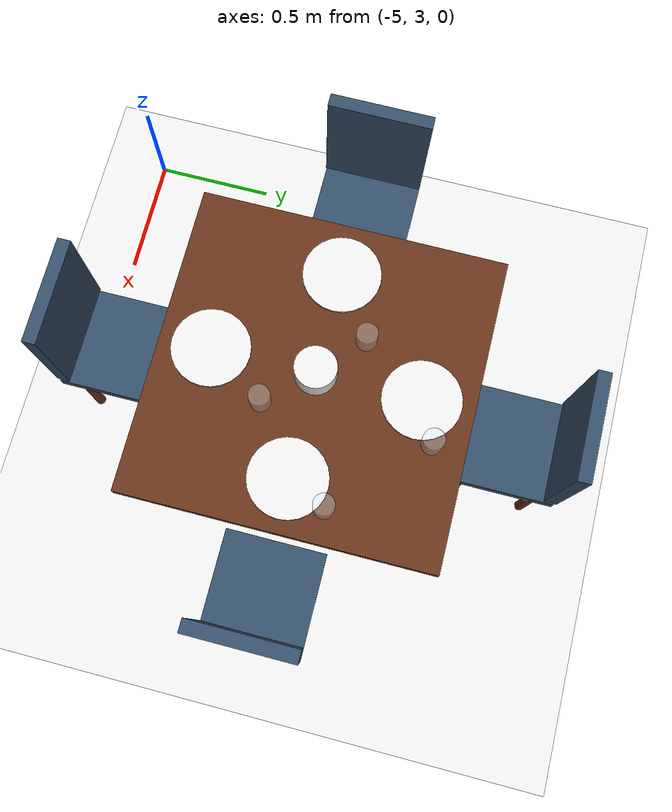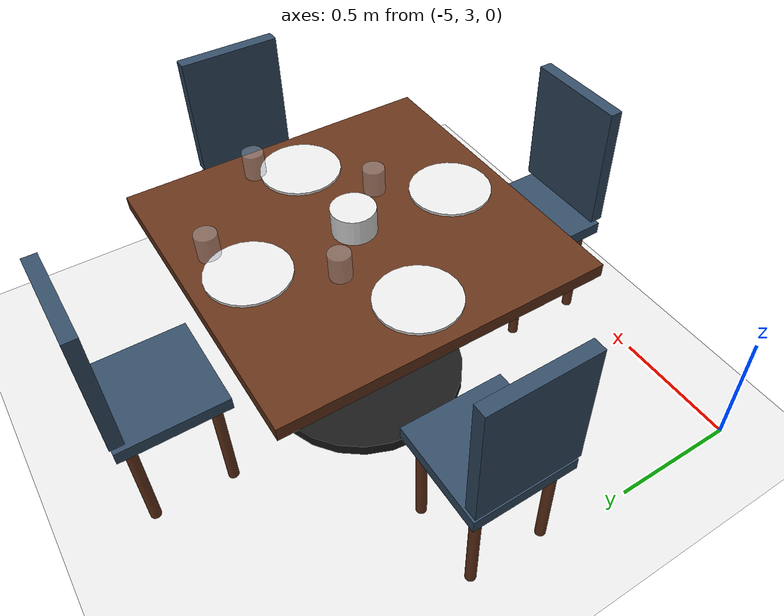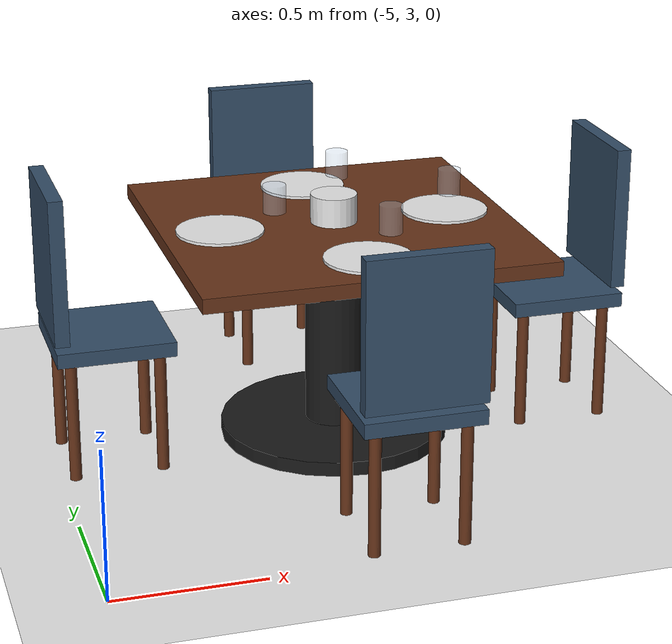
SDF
<sdf version="1.9">
 <world name="argo_restaurant">
  <model name="ground_plane">
   <static>true</static>
   <link name="link">
    <collision name="collision">
     <geometry><plane><normal>0 0 1</normal><size>100 100</size></plane></geometry>
    </collision>
    <visual name="visual">
     <geometry><plane><normal>0 0 1</normal><size>100 100</size></plane></geometry>
     <material>
      <ambient>0.9 0.9 0.9 1</ambient>
      <diffuse>0.9 0.9 0.9 1</diffuse>
      <specular>0.1 0.1 0.1 1</specular>
      <pbr><metal><roughness>0.1</roughness><metalness>0.0</metalness></metal></pbr>
     </material>
    </visual>
   </link>
  </model>
  <model name="table_6">
   <static>true</static>
   <link name="top_link">
    <pose>-4.0 4.0 0.75 0 0 0</pose>
    <collision name="top_collision"><geometry><box><size>1.2 1.2 0.05</size></box></geometry></collision>
    <visual name="top_visual">
     <geometry><box><size>1.2 1.2 0.05</size></box></geometry>
     <material>
      <ambient>0.4 0.2 0.1 1</ambient>
      <diffuse>0.4 0.2 0.1 1</diffuse>
      <specular>0.1 0.1 0.1 1</specular>
      <pbr><metal><roughness>0.7</roughness><metalness>0.1</metalness></metal></pbr>
     </material>
    </visual>
   </link>
   <link name="leg_link">
    <pose>-4.0 4.0 0.375 0 0 0</pose>
    <collision name="leg_collision">
     <geometry><cylinder><radius>0.1</radius><length>0.75</length></cylinder></geometry>
    </collision>
    <visual name="leg_visual">
     <geometry><cylinder><radius>0.1</radius><length>0.75</length></cylinder></geometry>
     <material>
      <ambient>0.1 0.1 0.1 1</ambient>
      <diffuse>0.1 0.1 0.1 1</diffuse>
      <specular>0.1 0.1 0.1 1</specular>
      <pbr><metal><roughness>0.5</roughness><metalness>0.0</metalness></metal></pbr>
     </material>
    </visual>
   </link>
   <link name="base_link">
    <pose>-4.0 4.0 0.025 0 0 0</pose>
    <collision name="base_collision">
     <geometry><cylinder><radius>0.4</radius><length>0.05</length></cylinder></geometry>
    </collision>
    <visual name="base_visual">
     <geometry><cylinder><radius>0.4</radius><length>0.05</length></cylinder></geometry>
     <material>
      <ambient>0.1 0.1 0.1 1</ambient>
      <diffuse>0.1 0.1 0.1 1</diffuse>
      <specular>0.1 0.1 0.1 1</specular>
      <pbr><metal><roughness>0.5</roughness><metalness>0.0</metalness></metal></pbr>
     </material>
    </visual>
   </link>
   <link name="chair_0_seat_link">
    <pose>-4.0 4.8 0.45 0 0 0</pose>
    <collision name="chair_0_seat_collision"><geometry><box><size>0.4 0.4 0.05</size></box></geometry></collision>
    <visual name="chair_0_seat_visual">
     <geometry><box><size>0.4 0.4 0.05</size></box></geometry>
     <material>
      <ambient>0.2 0.3 0.4 1</ambient>
      <diffuse>0.2 0.3 0.4 1</diffuse>
      <specular>0.1 0.1 0.1 1</specular>
      <pbr><metal><roughness>0.9</roughness><metalness>0.0</metalness></metal></pbr>
     </material>
    </visual>
   </link>
   <link name="chair_0_leg_-0.15_-0.15_link">
    <pose>-4.15 4.6499999999999995 0.225 0 0 0</pose>
    <collision name="chair_0_leg_-0.15_-0.15_collision">
     <geometry><cylinder><radius>0.02</radius><length>0.45</length></cylinder></geometry>
    </collision>
    <visual name="chair_0_leg_-0.15_-0.15_visual">
     <geometry><cylinder><radius>0.02</radius><length>0.45</length></cylinder></geometry>
     <material>
      <ambient>0.4 0.2 0.1 1</ambient>
      <diffuse>0.4 0.2 0.1 1</diffuse>
      <specular>0.1 0.1 0.1 1</specular>
      <pbr><metal><roughness>0.7</roughness><metalness>0.1</metalness></metal></pbr>
     </material>
    </visual>
   </link>
   <link name="chair_0_leg_0.15_-0.15_link">
    <pose>-3.85 4.6499999999999995 0.225 0 0 0</pose>
    <collision name="chair_0_leg_0.15_-0.15_collision">
     <geometry><cylinder><radius>0.02</radius><length>0.45</length></cylinder></geometry>
    </collision>
    <visual name="chair_0_leg_0.15_-0.15_visual">
     <geometry><cylinder><radius>0.02</radius><length>0.45</length></cylinder></geometry>
     <material>
      <ambient>0.4 0.2 0.1 1</ambient>
      <diffuse>0.4 0.2 0.1 1</diffuse>
      <specular>0.1 0.1 0.1 1</specular>
      <pbr><metal><roughness>0.7</roughness><metalness>0.1</metalness></metal></pbr>
     </material>
    </visual>
   </link>
   <link name="chair_0_leg_-0.15_0.15_link">
    <pose>-4.15 4.95 0.225 0 0 0</pose>
    <collision name="chair_0_leg_-0.15_0.15_collision">
     <geometry><cylinder><radius>0.02</radius><length>0.45</length></cylinder></geometry>
    </collision>
    <visual name="chair_0_leg_-0.15_0.15_visual">
     <geometry><cylinder><radius>0.02</radius><length>0.45</length></cylinder></geometry>
     <material>
      <ambient>0.4 0.2 0.1 1</ambient>
      <diffuse>0.4 0.2 0.1 1</diffuse>
      <specular>0.1 0.1 0.1 1</specular>
      <pbr><metal><roughness>0.7</roughness><metalness>0.1</metalness></metal></pbr>
     </material>
    </visual>
   </link>
   <link name="chair_0_leg_0.15_0.15_link">
    <pose>-3.85 4.95 0.225 0 0 0</pose>
    <collision name="chair_0_leg_0.15_0.15_collision">
     <geometry><cylinder><radius>0.02</radius><length>0.45</length></cylinder></geometry>
    </collision>
    <visual name="chair_0_leg_0.15_0.15_visual">
     <geometry><cylinder><radius>0.02</radius><length>0.45</length></cylinder></geometry>
     <material>
      <ambient>0.4 0.2 0.1 1</ambient>
      <diffuse>0.4 0.2 0.1 1</diffuse>
      <specular>0.1 0.1 0.1 1</specular>
      <pbr><metal><roughness>0.7</roughness><metalness>0.1</metalness></metal></pbr>
     </material>
    </visual>
   </link>
   <link name="chair_0_back_link">
    <pose>-4.0 4.9799999999999995 0.75 0 0 0</pose>
    <collision name="chair_0_back_collision"><geometry><box><size>0.4 0.05 0.5</size></box></geometry></collision>
    <visual name="chair_0_back_visual">
     <geometry><box><size>0.4 0.05 0.5</size></box></geometry>
     <material>
      <ambient>0.2 0.3 0.4 1</ambient>
      <diffuse>0.2 0.3 0.4 1</diffuse>
      <specular>0.1 0.1 0.1 1</specular>
      <pbr><metal><roughness>0.9</roughness><metalness>0.0</metalness></metal></pbr>
     </material>
    </visual>
   </link>
   <link name="chair_1_seat_link">
    <pose>-4.0 3.2 0.45 0 0 3.1415</pose>
    <collision name="chair_1_seat_collision"><geometry><box><size>0.4 0.4 0.05</size></box></geometry></collision>
    <visual name="chair_1_seat_visual">
     <geometry><box><size>0.4 0.4 0.05</size></box></geometry>
     <material>
      <ambient>0.2 0.3 0.4 1</ambient>
      <diffuse>0.2 0.3 0.4 1</diffuse>
      <specular>0.1 0.1 0.1 1</specular>
      <pbr><metal><roughness>0.9</roughness><metalness>0.0</metalness></metal></pbr>
     </material>
    </visual>
   </link>
   <link name="chair_1_leg_-0.15_-0.15_link">
    <pose>-4.15 3.0500000000000003 0.225 0 0 0</pose>
    <collision name="chair_1_leg_-0.15_-0.15_collision">
     <geometry><cylinder><radius>0.02</radius><length>0.45</length></cylinder></geometry>
    </collision>
    <visual name="chair_1_leg_-0.15_-0.15_visual">
     <geometry><cylinder><radius>0.02</radius><length>0.45</length></cylinder></geometry>
     <material>
      <ambient>0.4 0.2 0.1 1</ambient>
      <diffuse>0.4 0.2 0.1 1</diffuse>
      <specular>0.1 0.1 0.1 1</specular>
      <pbr><metal><roughness>0.7</roughness><metalness>0.1</metalness></metal></pbr>
     </material>
    </visual>
   </link>
   <link name="chair_1_leg_0.15_-0.15_link">
    <pose>-3.85 3.0500000000000003 0.225 0 0 0</pose>
    <collision name="chair_1_leg_0.15_-0.15_collision">
     <geometry><cylinder><radius>0.02</radius><length>0.45</length></cylinder></geometry>
    </collision>
    <visual name="chair_1_leg_0.15_-0.15_visual">
     <geometry><cylinder><radius>0.02</radius><length>0.45</length></cylinder></geometry>
     <material>
      <ambient>0.4 0.2 0.1 1</ambient>
      <diffuse>0.4 0.2 0.1 1</diffuse>
      <specular>0.1 0.1 0.1 1</specular>
      <pbr><metal><roughness>0.7</roughness><metalness>0.1</metalness></metal></pbr>
     </material>
    </visual>
   </link>
   <link name="chair_1_leg_-0.15_0.15_link">
    <pose>-4.15 3.35 0.225 0 0 0</pose>
    <collision name="chair_1_leg_-0.15_0.15_collision">
     <geometry><cylinder><radius>0.02</radius><length>0.45</length></cylinder></geometry>
    </collision>
    <visual name="chair_1_leg_-0.15_0.15_visual">
     <geometry><cylinder><radius>0.02</radius><length>0.45</length></cylinder></geometry>
     <material>
      <ambient>0.4 0.2 0.1 1</ambient>
      <diffuse>0.4 0.2 0.1 1</diffuse>
      <specular>0.1 0.1 0.1 1</specular>
      <pbr><metal><roughness>0.7</roughness><metalness>0.1</metalness></metal></pbr>
     </material>
    </visual>
   </link>
   <link name="chair_1_leg_0.15_0.15_link">
    <pose>-3.85 3.35 0.225 0 0 0</pose>
    <collision name="chair_1_leg_0.15_0.15_collision">
     <geometry><cylinder><radius>0.02</radius><length>0.45</length></cylinder></geometry>
    </collision>
    <visual name="chair_1_leg_0.15_0.15_visual">
     <geometry><cylinder><radius>0.02</radius><length>0.45</length></cylinder></geometry>
     <material>
      <ambient>0.4 0.2 0.1 1</ambient>
      <diffuse>0.4 0.2 0.1 1</diffuse>
      <specular>0.1 0.1 0.1 1</specular>
      <pbr><metal><roughness>0.7</roughness><metalness>0.1</metalness></metal></pbr>
     </material>
    </visual>
   </link>
   <link name="chair_1_back_link">
    <pose>-4.000016677646139 3.020000000772622 0.75 0 0 3.1415</pose>
    <collision name="chair_1_back_collision"><geometry><box><size>0.4 0.05 0.5</size></box></geometry></collision>
    <visual name="chair_1_back_visual">
     <geometry><box><size>0.4 0.05 0.5</size></box></geometry>
     <material>
      <ambient>0.2 0.3 0.4 1</ambient>
      <diffuse>0.2 0.3 0.4 1</diffuse>
      <specular>0.1 0.1 0.1 1</specular>
      <pbr><metal><roughness>0.9</roughness><metalness>0.0</metalness></metal></pbr>
     </material>
    </visual>
   </link>
   <link name="chair_2_seat_link">
    <pose>-3.2 4.0 0.45 0 0 -1.5707</pose>
    <collision name="chair_2_seat_collision"><geometry><box><size>0.4 0.4 0.05</size></box></geometry></collision>
    <visual name="chair_2_seat_visual">
     <geometry><box><size>0.4 0.4 0.05</size></box></geometry>
     <material>
      <ambient>0.2 0.3 0.4 1</ambient>
      <diffuse>0.2 0.3 0.4 1</diffuse>
      <specular>0.1 0.1 0.1 1</specular>
      <pbr><metal><roughness>0.9</roughness><metalness>0.0</metalness></metal></pbr>
     </material>
    </visual>
   </link>
   <link name="chair_2_leg_-0.15_-0.15_link">
    <pose>-3.35 3.85 0.225 0 0 0</pose>
    <collision name="chair_2_leg_-0.15_-0.15_collision">
     <geometry><cylinder><radius>0.02</radius><length>0.45</length></cylinder></geometry>
    </collision>
    <visual name="chair_2_leg_-0.15_-0.15_visual">
     <geometry><cylinder><radius>0.02</radius><length>0.45</length></cylinder></geometry>
     <material>
      <ambient>0.4 0.2 0.1 1</ambient>
      <diffuse>0.4 0.2 0.1 1</diffuse>
      <specular>0.1 0.1 0.1 1</specular>
      <pbr><metal><roughness>0.7</roughness><metalness>0.1</metalness></metal></pbr>
     </material>
    </visual>
   </link>
   <link name="chair_2_leg_0.15_-0.15_link">
    <pose>-3.0500000000000003 3.85 0.225 0 0 0</pose>
    <collision name="chair_2_leg_0.15_-0.15_collision">
     <geometry><cylinder><radius>0.02</radius><length>0.45</length></cylinder></geometry>
    </collision>
    <visual name="chair_2_leg_0.15_-0.15_visual">
     <geometry><cylinder><radius>0.02</radius><length>0.45</length></cylinder></geometry>
     <material>
      <ambient>0.4 0.2 0.1 1</ambient>
      <diffuse>0.4 0.2 0.1 1</diffuse>
      <specular>0.1 0.1 0.1 1</specular>
      <pbr><metal><roughness>0.7</roughness><metalness>0.1</metalness></metal></pbr>
     </material>
    </visual>
   </link>
   <link name="chair_2_leg_-0.15_0.15_link">
    <pose>-3.35 4.15 0.225 0 0 0</pose>
    <collision name="chair_2_leg_-0.15_0.15_collision">
     <geometry><cylinder><radius>0.02</radius><length>0.45</length></cylinder></geometry>
    </collision>
    <visual name="chair_2_leg_-0.15_0.15_visual">
     <geometry><cylinder><radius>0.02</radius><length>0.45</length></cylinder></geometry>
     <material>
      <ambient>0.4 0.2 0.1 1</ambient>
      <diffuse>0.4 0.2 0.1 1</diffuse>
      <specular>0.1 0.1 0.1 1</specular>
      <pbr><metal><roughness>0.7</roughness><metalness>0.1</metalness></metal></pbr>
     </material>
    </visual>
   </link>
   <link name="chair_2_leg_0.15_0.15_link">
    <pose>-3.0500000000000003 4.15 0.225 0 0 0</pose>
    <collision name="chair_2_leg_0.15_0.15_collision">
     <geometry><cylinder><radius>0.02</radius><length>0.45</length></cylinder></geometry>
    </collision>
    <visual name="chair_2_leg_0.15_0.15_visual">
     <geometry><cylinder><radius>0.02</radius><length>0.45</length></cylinder></geometry>
     <material>
      <ambient>0.4 0.2 0.1 1</ambient>
      <diffuse>0.4 0.2 0.1 1</diffuse>
      <specular>0.1 0.1 0.1 1</specular>
      <pbr><metal><roughness>0.7</roughness><metalness>0.1</metalness></metal></pbr>
     </material>
    </visual>
   </link>
   <link name="chair_2_back_link">
    <pose>-3.020000000835097 4.000017338823055 0.75 0 0 -1.5707</pose>
    <collision name="chair_2_back_collision"><geometry><box><size>0.4 0.05 0.5</size></box></geometry></collision>
    <visual name="chair_2_back_visual">
     <geometry><box><size>0.4 0.05 0.5</size></box></geometry>
     <material>
      <ambient>0.2 0.3 0.4 1</ambient>
      <diffuse>0.2 0.3 0.4 1</diffuse>
      <specular>0.1 0.1 0.1 1</specular>
      <pbr><metal><roughness>0.9</roughness><metalness>0.0</metalness></metal></pbr>
     </material>
    </visual>
   </link>
   <link name="chair_3_seat_link">
    <pose>-4.8 4.0 0.45 0 0 1.5707</pose>
    <collision name="chair_3_seat_collision"><geometry><box><size>0.4 0.4 0.05</size></box></geometry></collision>
    <visual name="chair_3_seat_visual">
     <geometry><box><size>0.4 0.4 0.05</size></box></geometry>
     <material>
      <ambient>0.2 0.3 0.4 1</ambient>
      <diffuse>0.2 0.3 0.4 1</diffuse>
      <specular>0.1 0.1 0.1 1</specular>
      <pbr><metal><roughness>0.9</roughness><metalness>0.0</metalness></metal></pbr>
     </material>
    </visual>
   </link>
   <link name="chair_3_leg_-0.15_-0.15_link">
    <pose>-4.95 3.85 0.225 0 0 0</pose>
    <collision name="chair_3_leg_-0.15_-0.15_collision">
     <geometry><cylinder><radius>0.02</radius><length>0.45</length></cylinder></geometry>
    </collision>
    <visual name="chair_3_leg_-0.15_-0.15_visual">
     <geometry><cylinder><radius>0.02</radius><length>0.45</length></cylinder></geometry>
     <material>
      <ambient>0.4 0.2 0.1 1</ambient>
      <diffuse>0.4 0.2 0.1 1</diffuse>
      <specular>0.1 0.1 0.1 1</specular>
      <pbr><metal><roughness>0.7</roughness><metalness>0.1</metalness></metal></pbr>
     </material>
    </visual>
   </link>
   <link name="chair_3_leg_0.15_-0.15_link">
    <pose>-4.6499999999999995 3.85 0.225 0 0 0</pose>
    <collision name="chair_3_leg_0.15_-0.15_collision">
     <geometry><cylinder><radius>0.02</radius><length>0.45</length></cylinder></geometry>
    </collision>
    <visual name="chair_3_leg_0.15_-0.15_visual">
     <geometry><cylinder><radius>0.02</radius><length>0.45</length></cylinder></geometry>
     <material>
      <ambient>0.4 0.2 0.1 1</ambient>
      <diffuse>0.4 0.2 0.1 1</diffuse>
      <specular>0.1 0.1 0.1 1</specular>
      <pbr><metal><roughness>0.7</roughness><metalness>0.1</metalness></metal></pbr>
     </material>
    </visual>
   </link>
   <link name="chair_3_leg_-0.15_0.15_link">
    <pose>-4.95 4.15 0.225 0 0 0</pose>
    <collision name="chair_3_leg_-0.15_0.15_collision">
     <geometry><cylinder><radius>0.02</radius><length>0.45</length></cylinder></geometry>
    </collision>
    <visual name="chair_3_leg_-0.15_0.15_visual">
     <geometry><cylinder><radius>0.02</radius><length>0.45</length></cylinder></geometry>
     <material>
      <ambient>0.4 0.2 0.1 1</ambient>
      <diffuse>0.4 0.2 0.1 1</diffuse>
      <specular>0.1 0.1 0.1 1</specular>
      <pbr><metal><roughness>0.7</roughness><metalness>0.1</metalness></metal></pbr>
     </material>
    </visual>
   </link>
   <link name="chair_3_leg_0.15_0.15_link">
    <pose>-4.6499999999999995 4.15 0.225 0 0 0</pose>
    <collision name="chair_3_leg_0.15_0.15_collision">
     <geometry><cylinder><radius>0.02</radius><length>0.45</length></cylinder></geometry>
    </collision>
    <visual name="chair_3_leg_0.15_0.15_visual">
     <geometry><cylinder><radius>0.02</radius><length>0.45</length></cylinder></geometry>
     <material>
      <ambient>0.4 0.2 0.1 1</ambient>
      <diffuse>0.4 0.2 0.1 1</diffuse>
      <specular>0.1 0.1 0.1 1</specular>
      <pbr><metal><roughness>0.7</roughness><metalness>0.1</metalness></metal></pbr>
     </material>
    </visual>
   </link>
   <link name="chair_3_back_link">
    <pose>-4.979999999164903 4.000017338823055 0.75 0 0 1.5707</pose>
    <collision name="chair_3_back_collision"><geometry><box><size>0.4 0.05 0.5</size></box></geometry></collision>
    <visual name="chair_3_back_visual">
     <geometry><box><size>0.4 0.05 0.5</size></box></geometry>
     <material>
      <ambient>0.2 0.3 0.4 1</ambient>
      <diffuse>0.2 0.3 0.4 1</diffuse>
      <specular>0.1 0.1 0.1 1</specular>
      <pbr><metal><roughness>0.9</roughness><metalness>0.0</metalness></metal></pbr>
     </material>
    </visual>
   </link>
   <link name="centerpiece_pot_link">
    <pose>-4.0 4.0 0.825 0 0 0</pose>
    <collision name="centerpiece_pot_collision">
     <geometry><cylinder><radius>0.08</radius><length>0.1</length></cylinder></geometry>
    </collision>
    <visual name="centerpiece_pot_visual">
     <geometry><cylinder><radius>0.08</radius><length>0.1</length></cylinder></geometry>
     <material>
      <ambient>0.9 0.9 0.9 1</ambient>
      <diffuse>0.9 0.9 0.9 1</diffuse>
      <specular>0.1 0.1 0.1 1</specular>
      <pbr><metal><roughness>0.2</roughness><metalness>0.0</metalness></metal></pbr>
     </material>
    </visual>
   </link>
   <link name="plate_0_link">
    <pose>-4.0 4.4 0.78 0 0 0</pose>
    <collision name="plate_0_collision">
     <geometry><cylinder><radius>0.15</radius><length>0.01</length></cylinder></geometry>
    </collision>
    <visual name="plate_0_visual">
     <geometry><cylinder><radius>0.15</radius><length>0.01</length></cylinder></geometry>
     <material>
      <ambient>0.9 0.9 0.9 1</ambient>
      <diffuse>0.9 0.9 0.9 1</diffuse>
      <specular>0.1 0.1 0.1 1</specular>
      <pbr><metal><roughness>0.2</roughness><metalness>0.0</metalness></metal></pbr>
     </material>
    </visual>
   </link>
   <link name="glass_0_link">
    <pose>-3.85 4.47 0.825 0 0 0</pose>
    <collision name="glass_0_collision">
     <geometry><cylinder><radius>0.04</radius><length>0.1</length></cylinder></geometry>
    </collision>
    <visual name="glass_0_visual">
     <geometry><cylinder><radius>0.04</radius><length>0.1</length></cylinder></geometry>
     <material>
      <ambient>0.8 0.9 1.0 0.3</ambient>
      <diffuse>0.8 0.9 1.0 0.3</diffuse>
      <specular>0.9 0.9 0.9 1</specular>
      <pbr><metal><roughness>0.0</roughness><metalness>0.9</metalness></metal></pbr>
     </material>
    </visual>
   </link>
   <link name="plate_1_link">
    <pose>-4.0 3.6 0.78 0 0 0</pose>
    <collision name="plate_1_collision">
     <geometry><cylinder><radius>0.15</radius><length>0.01</length></cylinder></geometry>
    </collision>
    <visual name="plate_1_visual">
     <geometry><cylinder><radius>0.15</radius><length>0.01</length></cylinder></geometry>
     <material>
      <ambient>0.9 0.9 0.9 1</ambient>
      <diffuse>0.9 0.9 0.9 1</diffuse>
      <specular>0.1 0.1 0.1 1</specular>
      <pbr><metal><roughness>0.2</roughness><metalness>0.0</metalness></metal></pbr>
     </material>
    </visual>
   </link>
   <link name="glass_1_link">
    <pose>-3.85 3.83 0.825 0 0 0</pose>
    <collision name="glass_1_collision">
     <geometry><cylinder><radius>0.04</radius><length>0.1</length></cylinder></geometry>
    </collision>
    <visual name="glass_1_visual">
     <geometry><cylinder><radius>0.04</radius><length>0.1</length></cylinder></geometry>
     <material>
      <ambient>0.8 0.9 1.0 0.3</ambient>
      <diffuse>0.8 0.9 1.0 0.3</diffuse>
      <specular>0.9 0.9 0.9 1</specular>
      <pbr><metal><roughness>0.0</roughness><metalness>0.9</metalness></metal></pbr>
     </material>
    </visual>
   </link>
   <link name="plate_2_link">
    <pose>-3.6 4.0 0.78 0 0 0</pose>
    <collision name="plate_2_collision">
     <geometry><cylinder><radius>0.15</radius><length>0.01</length></cylinder></geometry>
    </collision>
    <visual name="plate_2_visual">
     <geometry><cylinder><radius>0.15</radius><length>0.01</length></cylinder></geometry>
     <material>
      <ambient>0.9 0.9 0.9 1</ambient>
      <diffuse>0.9 0.9 0.9 1</diffuse>
      <specular>0.1 0.1 0.1 1</specular>
      <pbr><metal><roughness>0.2</roughness><metalness>0.0</metalness></metal></pbr>
     </material>
    </visual>
   </link>
   <link name="glass_2_link">
    <pose>-3.53 4.15 0.825 0 0 0</pose>
    <collision name="glass_2_collision">
     <geometry><cylinder><radius>0.04</radius><length>0.1</length></cylinder></geometry>
    </collision>
    <visual name="glass_2_visual">
     <geometry><cylinder><radius>0.04</radius><length>0.1</length></cylinder></geometry>
     <material>
      <ambient>0.8 0.9 1.0 0.3</ambient>
      <diffuse>0.8 0.9 1.0 0.3</diffuse>
      <specular>0.9 0.9 0.9 1</specular>
      <pbr><metal><roughness>0.0</roughness><metalness>0.9</metalness></metal></pbr>
     </material>
    </visual>
   </link>
   <link name="plate_3_link">
    <pose>-4.4 4.0 0.78 0 0 0</pose>
    <collision name="plate_3_collision">
     <geometry><cylinder><radius>0.15</radius><length>0.01</length></cylinder></geometry>
    </collision>
    <visual name="plate_3_visual">
     <geometry><cylinder><radius>0.15</radius><length>0.01</length></cylinder></geometry>
     <material>
      <ambient>0.9 0.9 0.9 1</ambient>
      <diffuse>0.9 0.9 0.9 1</diffuse>
      <specular>0.1 0.1 0.1 1</specular>
      <pbr><metal><roughness>0.2</roughness><metalness>0.0</metalness></metal></pbr>
     </material>
    </visual>
   </link>
   <link name="glass_3_link">
    <pose>-4.17 4.15 0.825 0 0 0</pose>
    <collision name="glass_3_collision">
     <geometry><cylinder><radius>0.04</radius><length>0.1</length></cylinder></geometry>
    </collision>
    <visual name="glass_3_visual">
     <geometry><cylinder><radius>0.04</radius><length>0.1</length></cylinder></geometry>
     <material>
      <ambient>0.8 0.9 1.0 0.3</ambient>
      <diffuse>0.8 0.9 1.0 0.3</diffuse>
      <specular>0.9 0.9 0.9 1</specular>
      <pbr><metal><roughness>0.0</roughness><metalness>0.9</metalness></metal></pbr>
     </material>
    </visual>
   </link>
  </model>
 </world>
</sdf>
